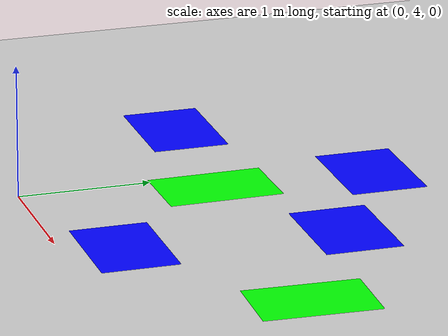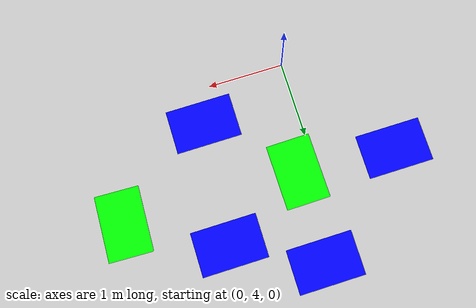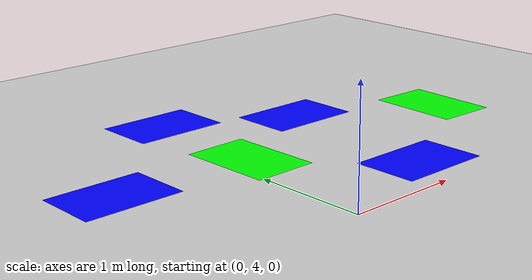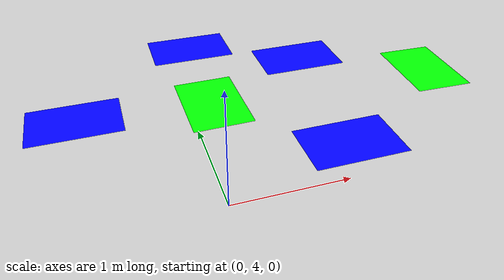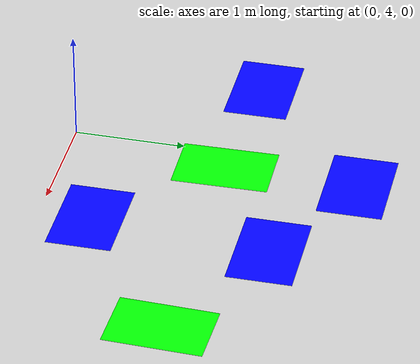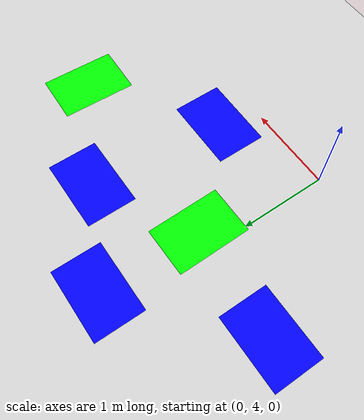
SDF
<sdf version="1.6">
 <world name="default">
  <model name="ground_plane">
   <pose>0 0 0.001 0 -0 0</pose>
   <static>1</static>
   <link name="link">
    <collision name="collision">
     <geometry><plane><normal>0 0 1</normal><size>100 100</size></plane></geometry>
     <surface><friction><ode><mu>100</mu><mu2>50</mu2></ode></friction></surface>
    </collision>
    <visual name="visual">
     <cast_shadows>0</cast_shadows>
     <geometry><plane><normal>0 0 1</normal><size>100 100</size></plane></geometry>
     <material>
      <script><uri>file://media/materials/scripts/gazebo.material</uri><name>Gazebo/Grey</name></script>
     </material>
    </visual>
   </link>
  </model>
  <model name="corridor_14">
   <link name="link">
    <pose>0 0 0.001 0 -0 0</pose>
    <inertial>
     <mass>0.0352517</mass>
     <inertia>
      <ixx>0.00099707</ixx>
      <ixy>0</ixy>
      <ixz>0</ixz>
      <iyy>0.00220147</iyy>
      <iyz>0</iyz>
      <izz>0.0031692</izz>
     </inertia>
     <pose>0 0 0.001 0 -0 0</pose>
    </inertial>
    <visual name="visual">
     <geometry><box><size>0.862743 0.578289 1e-06</size></box></geometry>
     <material>
      <script><name>Gazebo/Grey</name><uri>file://media/materials/scripts/gazebo.material</uri></script>
      <ambient>0 1 0 1</ambient>
      <diffuse>0 1 0 1</diffuse>
      <specular>0 1 0 1</specular>
      <emissive>0 1 0 1</emissive>
      <shader type="vertex"><normal_map>__default__</normal_map></shader>
     </material>
     <pose>0 0 0.001 0 -0 0</pose>
    </visual>
    <collision name="collision">
     <pose>0 0 0.001 0 -0 0</pose>
     <geometry><box><size>0.862743 0.578289 0.000477</size></box></geometry>
     <surface>
      <friction>
       <ode><mu>1</mu><mu2>1</mu2><fdir1>0 0 0</fdir1><slip1>0</slip1><slip2>0</slip2></ode>
       <torsional>
        <coefficient>1</coefficient>
        <patch_radius>0</patch_radius>
        <surface_radius>0</surface_radius>
        <use_patch_radius>1</use_patch_radius>
        <ode><slip>0</slip></ode>
       </torsional>
      </friction>
      <bounce><restitution_coefficient>0</restitution_coefficient><threshold>1e+06</threshold></bounce>
      <contact>
       <collide_without_contact>0</collide_without_contact>
       <collide_without_contact_bitmask>1</collide_without_contact_bitmask>
       <collide_bitmask>1</collide_bitmask>
       <ode>
        <soft_cfm>0</soft_cfm>
        <soft_erp>0.2</soft_erp>
        <kp>1e+13</kp>
        <kd>1</kd>
        <max_vel>0.01</max_vel>
        <min_depth>0</min_depth>
       </ode>
       <bullet>
        <split_impulse>1</split_impulse>
        <split_impulse_penetration_threshold>-0.01</split_impulse_penetration_threshold>
        <soft_cfm>0</soft_cfm>
        <soft_erp>0.2</soft_erp>
        <kp>1e+13</kp>
        <kd>1</kd>
       </bullet>
      </contact>
     </surface>
    </collision>
   </link>
   <static>1</static>
   <pose>2.55201 5.40625 0 0 0 -1.60524</pose>
  </model>
  <model name="corridor_15">
   <link name="link">
    <pose>0 0 0.001 0 -0 0</pose>
    <inertial>
     <mass>0.0352517</mass>
     <inertia>
      <ixx>0.00099707</ixx>
      <ixy>0</ixy>
      <ixz>0</ixz>
      <iyy>0.00220147</iyy>
      <iyz>0</iyz>
      <izz>0.0031692</izz>
     </inertia>
     <pose>0 0 0.001 0 -0 0</pose>
    </inertial>
    <visual name="visual">
     <geometry><box><size>0.862743 0.578289 1e-06</size></box></geometry>
     <material>
      <script><name>Gazebo/Grey</name><uri>file://media/materials/scripts/gazebo.material</uri></script>
      <ambient>0 1 0 1</ambient>
      <diffuse>0 1 0 1</diffuse>
      <specular>0 1 0 1</specular>
      <emissive>0 1 0 1</emissive>
      <shader type="vertex"><normal_map>__default__</normal_map></shader>
     </material>
     <pose>0 0 0.001 0 -0 0</pose>
    </visual>
    <collision name="collision">
     <pose>0 0 0.001 0 -0 0</pose>
     <geometry><box><size>0.862743 0.578289 0.000477</size></box></geometry>
     <surface>
      <friction>
       <ode><mu>1</mu><mu2>1</mu2><fdir1>0 0 0</fdir1><slip1>0</slip1><slip2>0</slip2></ode>
       <torsional>
        <coefficient>1</coefficient>
        <patch_radius>0</patch_radius>
        <surface_radius>0</surface_radius>
        <use_patch_radius>1</use_patch_radius>
        <ode><slip>0</slip></ode>
       </torsional>
      </friction>
      <bounce><restitution_coefficient>0</restitution_coefficient><threshold>1e+06</threshold></bounce>
      <contact>
       <collide_without_contact>0</collide_without_contact>
       <collide_without_contact_bitmask>1</collide_without_contact_bitmask>
       <collide_bitmask>1</collide_bitmask>
       <ode>
        <soft_cfm>0</soft_cfm>
        <soft_erp>0.2</soft_erp>
        <kp>1e+13</kp>
        <kd>1</kd>
        <max_vel>0.01</max_vel>
        <min_depth>0</min_depth>
       </ode>
       <bullet>
        <split_impulse>1</split_impulse>
        <split_impulse_penetration_threshold>-0.01</split_impulse_penetration_threshold>
        <soft_cfm>0</soft_cfm>
        <soft_erp>0.2</soft_erp>
        <kp>1e+13</kp>
        <kd>1</kd>
       </bullet>
      </contact>
     </surface>
    </collision>
   </link>
   <static>1</static>
   <pose>0.238653 5.43051 0 0 -0 1.58447</pose>
  </model>
  <model name="intersection_52">
   <link name="link">
    <pose>0 0 0.001 0 -0 0</pose>
    <inertial>
     <mass>0.0352517</mass>
     <inertia>
      <ixx>0.000997067</ixx>
      <ixy>0</ixy>
      <ixz>0</ixz>
      <iyy>0.00220147</iyy>
      <iyz>0</iyz>
      <izz>0.0031692</izz>
     </inertia>
     <pose>0 0 0.001 0 -0 0</pose>
    </inertial>
    <visual name="visual">
     <geometry><box><size>0.862743 0.578289 1e-06</size></box></geometry>
     <material>
      <script><name>Gazebo/Grey</name><uri>file://media/materials/scripts/gazebo.material</uri></script>
      <ambient>0 0 1 1</ambient>
      <diffuse>0 0 1 1</diffuse>
      <specular>0 0 1 1</specular>
      <emissive>0 0 1 1</emissive>
      <shader type="vertex"><normal_map>__default__</normal_map></shader>
     </material>
     <pose>0 0 0.001 0 -0 0</pose>
    </visual>
    <collision name="collision">
     <pose>0 0 0.001 0 -0 0</pose>
     <geometry><box><size>0.862743 0.578289 0.000477</size></box></geometry>
     <surface>
      <friction>
       <ode><mu>1</mu><mu2>1</mu2><fdir1>0 0 0</fdir1><slip1>0</slip1><slip2>0</slip2></ode>
       <torsional>
        <coefficient>1</coefficient>
        <patch_radius>0</patch_radius>
        <surface_radius>0</surface_radius>
        <use_patch_radius>1</use_patch_radius>
        <ode><slip>0</slip></ode>
       </torsional>
      </friction>
      <bounce><restitution_coefficient>0</restitution_coefficient><threshold>1e+06</threshold></bounce>
      <contact>
       <collide_without_contact>0</collide_without_contact>
       <collide_without_contact_bitmask>1</collide_without_contact_bitmask>
       <collide_bitmask>1</collide_bitmask>
       <ode>
        <soft_cfm>0</soft_cfm>
        <soft_erp>0.2</soft_erp>
        <kp>1e+13</kp>
        <kd>1</kd>
        <max_vel>0.01</max_vel>
        <min_depth>0</min_depth>
       </ode>
       <bullet>
        <split_impulse>1</split_impulse>
        <split_impulse_penetration_threshold>-0.01</split_impulse_penetration_threshold>
        <soft_cfm>0</soft_cfm>
        <soft_erp>0.2</soft_erp>
        <kp>1e+13</kp>
        <kd>1</kd>
       </bullet>
      </contact>
     </surface>
    </collision>
   </link>
   <static>1</static>
   <pose>-1.04696 5.51029 0 0 -0 0</pose>
  </model>
  <model name="intersection_53">
   <link name="link">
    <pose>0 0 0.001 0 -0 0</pose>
    <inertial>
     <mass>0.0352517</mass>
     <inertia>
      <ixx>0.000997067</ixx>
      <ixy>0</ixy>
      <ixz>0</ixz>
      <iyy>0.00220147</iyy>
      <iyz>0</iyz>
      <izz>0.0031692</izz>
     </inertia>
     <pose>0 0 0.001 0 -0 0</pose>
    </inertial>
    <visual name="visual">
     <geometry><box><size>0.862743 0.578289 1e-06</size></box></geometry>
     <material>
      <script><name>Gazebo/Grey</name><uri>file://media/materials/scripts/gazebo.material</uri></script>
      <ambient>0 0 1 1</ambient>
      <diffuse>0 0 1 1</diffuse>
      <specular>0 0 1 1</specular>
      <emissive>0 0 1 1</emissive>
      <shader type="vertex"><normal_map>__default__</normal_map></shader>
     </material>
     <pose>0 0 0.001 0 -0 0</pose>
    </visual>
    <collision name="collision">
     <pose>0 0 0.001 0 -0 0</pose>
     <geometry><box><size>0.862743 0.578289 0.000477</size></box></geometry>
     <surface>
      <friction>
       <ode><mu>1</mu><mu2>1</mu2><fdir1>0 0 0</fdir1><slip1>0</slip1><slip2>0</slip2></ode>
       <torsional>
        <coefficient>1</coefficient>
        <patch_radius>0</patch_radius>
        <surface_radius>0</surface_radius>
        <use_patch_radius>1</use_patch_radius>
        <ode><slip>0</slip></ode>
       </torsional>
      </friction>
      <bounce><restitution_coefficient>0</restitution_coefficient><threshold>1e+06</threshold></bounce>
      <contact>
       <collide_without_contact>0</collide_without_contact>
       <collide_without_contact_bitmask>1</collide_without_contact_bitmask>
       <collide_bitmask>1</collide_bitmask>
       <ode>
        <soft_cfm>0</soft_cfm>
        <soft_erp>0.2</soft_erp>
        <kp>1e+13</kp>
        <kd>1</kd>
        <max_vel>0.01</max_vel>
        <min_depth>0</min_depth>
       </ode>
       <bullet>
        <split_impulse>1</split_impulse>
        <split_impulse_penetration_threshold>-0.01</split_impulse_penetration_threshold>
        <soft_cfm>0</soft_cfm>
        <soft_erp>0.2</soft_erp>
        <kp>1e+13</kp>
        <kd>1</kd>
       </bullet>
      </contact>
     </surface>
    </collision>
   </link>
   <static>1</static>
   <pose>1.21801 4.45524 0 0 -0 0</pose>
  </model>
  <model name="intersection_61">
   <link name="link">
    <pose>0 0 0.001 0 -0 0</pose>
    <inertial>
     <mass>0.0352517</mass>
     <inertia>
      <ixx>0.000997067</ixx>
      <ixy>0</ixy>
      <ixz>0</ixz>
      <iyy>0.00220147</iyy>
      <iyz>0</iyz>
      <izz>0.0031692</izz>
     </inertia>
     <pose>0 0 0.001 0 -0 0</pose>
    </inertial>
    <visual name="visual">
     <geometry><box><size>0.862743 0.578289 1e-06</size></box></geometry>
     <material>
      <script><name>Gazebo/Grey</name><uri>file://media/materials/scripts/gazebo.material</uri></script>
      <ambient>0 0 1 1</ambient>
      <diffuse>0 0 1 1</diffuse>
      <specular>0 0 1 1</specular>
      <emissive>0 0 1 1</emissive>
      <shader type="vertex"><normal_map>__default__</normal_map></shader>
     </material>
     <pose>0 0 0.001 0 -0 0</pose>
    </visual>
    <collision name="collision">
     <pose>0 0 0.001 0 -0 0</pose>
     <geometry><box><size>0.862743 0.578289 0.000477</size></box></geometry>
     <surface>
      <friction>
       <ode><mu>1</mu><mu2>1</mu2><fdir1>0 0 0</fdir1><slip1>0</slip1><slip2>0</slip2></ode>
       <torsional>
        <coefficient>1</coefficient>
        <patch_radius>0</patch_radius>
        <surface_radius>0</surface_radius>
        <use_patch_radius>1</use_patch_radius>
        <ode><slip>0</slip></ode>
       </torsional>
      </friction>
      <bounce><restitution_coefficient>0</restitution_coefficient><threshold>1e+06</threshold></bounce>
      <contact>
       <collide_without_contact>0</collide_without_contact>
       <collide_without_contact_bitmask>1</collide_without_contact_bitmask>
       <collide_bitmask>1</collide_bitmask>
       <ode>
        <soft_cfm>0</soft_cfm>
        <soft_erp>0.2</soft_erp>
        <kp>1e+13</kp>
        <kd>1</kd>
        <max_vel>0.01</max_vel>
        <min_depth>0</min_depth>
       </ode>
       <bullet>
        <split_impulse>1</split_impulse>
        <split_impulse_penetration_threshold>-0.01</split_impulse_penetration_threshold>
        <soft_cfm>0</soft_cfm>
        <soft_erp>0.2</soft_erp>
        <kp>1e+13</kp>
        <kd>1</kd>
       </bullet>
      </contact>
     </surface>
    </collision>
   </link>
   <static>1</static>
   <pose>0.265023 6.62912 0 0 -0 0</pose>
  </model>
  <model name="intersection_73">
   <link name="link">
    <pose>0 0 0.001 0 -0 0</pose>
    <inertial>
     <mass>0.0352517</mass>
     <inertia>
      <ixx>0.000997067</ixx>
      <ixy>0</ixy>
      <ixz>0</ixz>
      <iyy>0.00220147</iyy>
      <iyz>0</iyz>
      <izz>0.0031692</izz>
     </inertia>
     <pose>0 0 0.001 0 -0 0</pose>
    </inertial>
    <visual name="visual">
     <geometry><box><size>0.862743 0.578289 1e-06</size></box></geometry>
     <material>
      <script><name>Gazebo/Grey</name><uri>file://media/materials/scripts/gazebo.material</uri></script>
      <ambient>0 0 1 1</ambient>
      <diffuse>0 0 1 1</diffuse>
      <specular>0 0 1 1</specular>
      <emissive>0 0 1 1</emissive>
      <shader type="vertex"><normal_map>__default__</normal_map></shader>
     </material>
     <pose>0 0 0.001 0 -0 0</pose>
    </visual>
    <collision name="collision">
     <pose>0 0 0.001 0 -0 0</pose>
     <geometry><box><size>0.862743 0.578289 0.000477</size></box></geometry>
     <surface>
      <friction>
       <ode><mu>1</mu><mu2>1</mu2><fdir1>0 0 0</fdir1><slip1>0</slip1><slip2>0</slip2></ode>
       <torsional>
        <coefficient>1</coefficient>
        <patch_radius>0</patch_radius>
        <surface_radius>0</surface_radius>
        <use_patch_radius>1</use_patch_radius>
        <ode><slip>0</slip></ode>
       </torsional>
      </friction>
      <bounce><restitution_coefficient>0</restitution_coefficient><threshold>1e+06</threshold></bounce>
      <contact>
       <collide_without_contact>0</collide_without_contact>
       <collide_without_contact_bitmask>1</collide_without_contact_bitmask>
       <collide_bitmask>1</collide_bitmask>
       <ode>
        <soft_cfm>0</soft_cfm>
        <soft_erp>0.2</soft_erp>
        <kp>1e+13</kp>
        <kd>1</kd>
        <max_vel>0.01</max_vel>
        <min_depth>0</min_depth>
       </ode>
       <bullet>
        <split_impulse>1</split_impulse>
        <split_impulse_penetration_threshold>-0.01</split_impulse_penetration_threshold>
        <soft_cfm>0</soft_cfm>
        <soft_erp>0.2</soft_erp>
        <kp>1e+13</kp>
        <kd>1</kd>
       </bullet>
      </contact>
     </surface>
    </collision>
   </link>
   <static>1</static>
   <pose>1.35166 6.06148 0 0 -0 0</pose>
  </model>
 </world>
</sdf>
